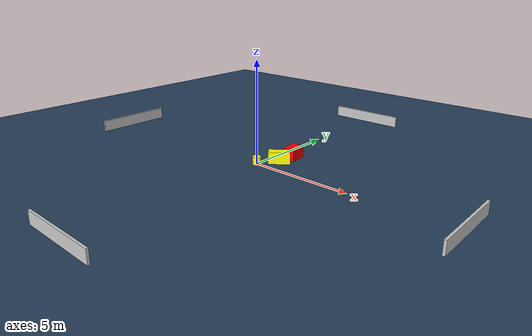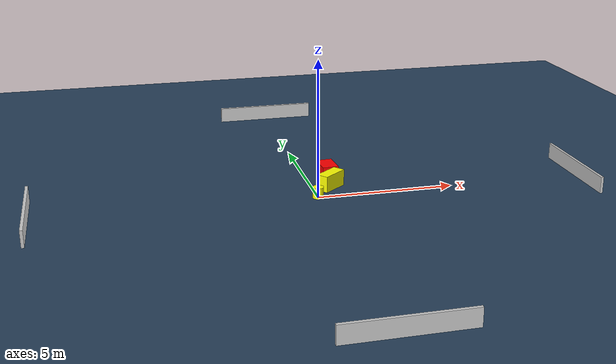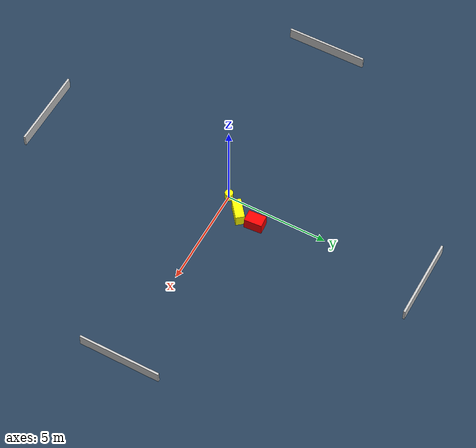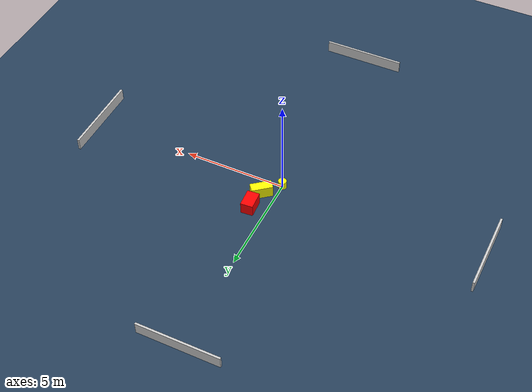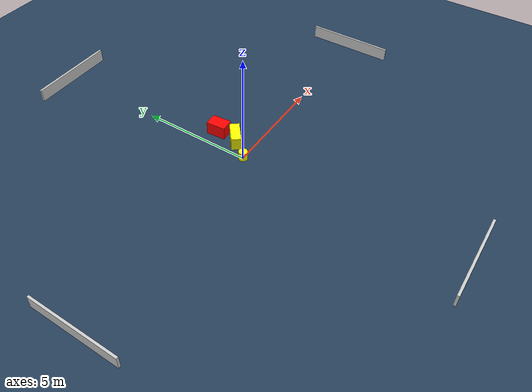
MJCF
<?xml version="1.0" ?>
<mujoco model="generated_environment">
  <option timestep="0.01" integrator="RK4" cone="elliptic"/>
  <default>
    <geom density="1"/>
  </default>
  <asset>
    <texture builtin="gradient" height="3072" name="skybox" rgb1="0.3 0.5 0.7" rgb2="0 0 0" type="skybox" width="512"/>
    <texture builtin="checker" height="300" name="groundplane" rgb1="0.2 0.3 0.4" rgb2="0.1 0.2 0.3" type="2d" width="300"/>
    <material name="groundplane" reflectance="0.2" texrepeat="5 5" texture="groundplane"/>
  </asset>
  <worldbody>
    <light dir="0 0 -1" directional="true" pos="0 0 1.5"/>
    <geom condim="3" friction="0.5 0.005 0.001" material="groundplane" name="floor" pos="0 0 0" size="0 0 0.05" type="plane"/>
    <body name="walls">
      <geom name="wall_1" condim="4" pos="-10.0 0.0 0.3" rgba="0.800000011920929 0.800000011920929 0.800000011920929 1.0" size="0.05 2.0 0.3" type="box"/>
      <geom name="wall_2" condim="4" pos="10.0 0.0 0.3" rgba="0.800000011920929 0.800000011920929 0.800000011920929 1.0" size="0.05 2.0 0.3" type="box"/>
      <geom name="wall_3" condim="4" pos="0.0 -10.0 0.3" rgba="0.800000011920929 0.800000011920929 0.800000011920929 1.0" size="2.0 0.05 0.3" type="box"/>
      <geom name="wall_4" condim="4" pos="0.0 10.0 0.3" rgba="0.800000011920929 0.800000011920929 0.800000011920929 1.0" size="2.0 0.05 0.3" type="box"/>
    </body>
    <body name="robot">
      <joint name="joint_x" type="slide" pos="0 0 0" axis="1 0 0"/>
      <joint name="joint_y" type="slide" pos="0 0 0" axis="0 1 0"/>
      <geom name="robot" type="cylinder" pos="0.0 0.0 0.2" size="0.2 0.2 0.0" mass="5.0" friction="1.0 0.005 0.0001" condim="4" rgba="1.0 1.0 0.0 1.0"/>
    </body>
    <body name="obstacle_1_movable">
      <geom name="obstacle_1_movable" condim="4" pos="0.6790562803869334 0.8571544401342556 0.3" euler="0 0 128.96855022614415" friction="0.0 0.005 0.001" rgba="1.0 1.0 0.0 1.0" size="0.22209006272298812 0.5159486569310194 0.3" type="box" mass="0.1"/>
      <joint type="free"/>
    </body>
    <body name="obstacle_2_static">
      <geom name="obstacle_2_static" condim="4" pos="0.7901754104101502 1.8104233982756277 0.3" euler="0 0 274.2045087582215" friction="0.0 0.005 0.001" rgba="1.0 0.0 0.0 1.0" size="0.4381952129861613 0.2974950911268476 0.3" type="box"/>
    </body>
  </worldbody>
  <actuator>
    <motor name="actuator_x" joint="joint_x" gear="1" ctrlrange="-1 1"/>
    <motor name="actuator_y" joint="joint_y" gear="1" ctrlrange="-1 1"/>
  </actuator>
</mujoco>
